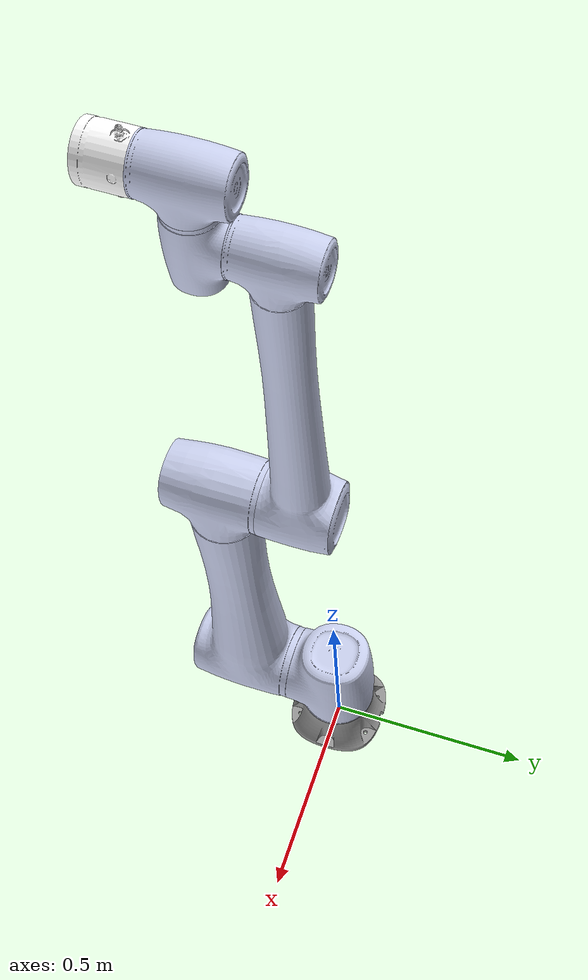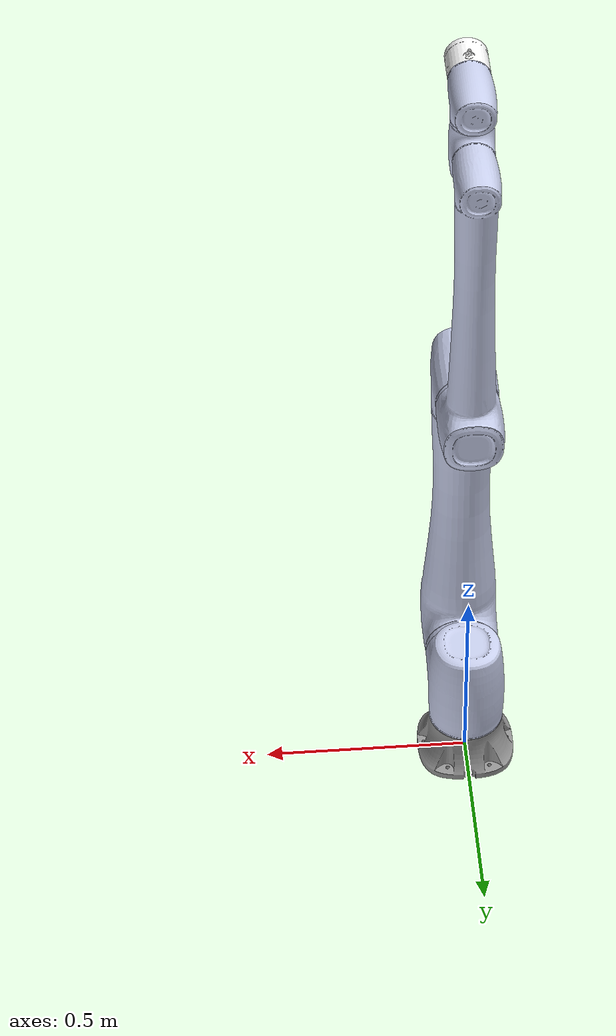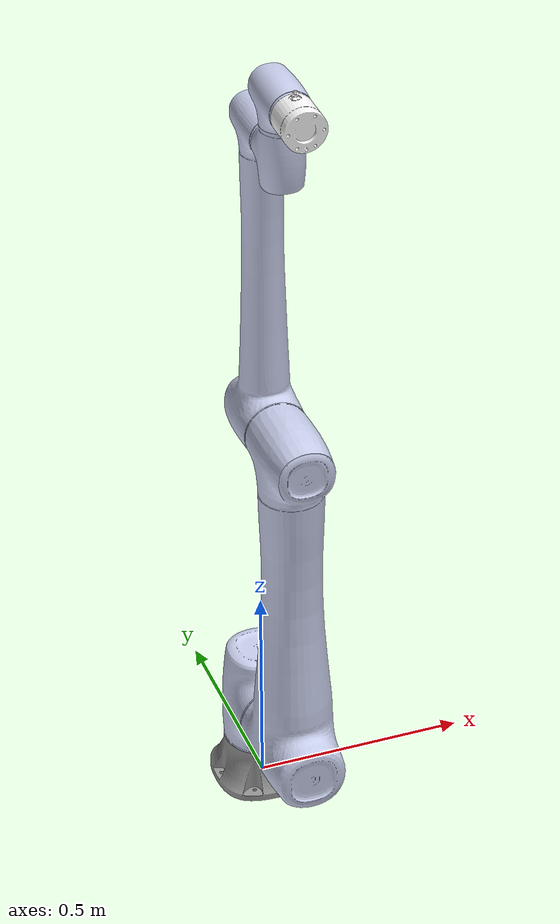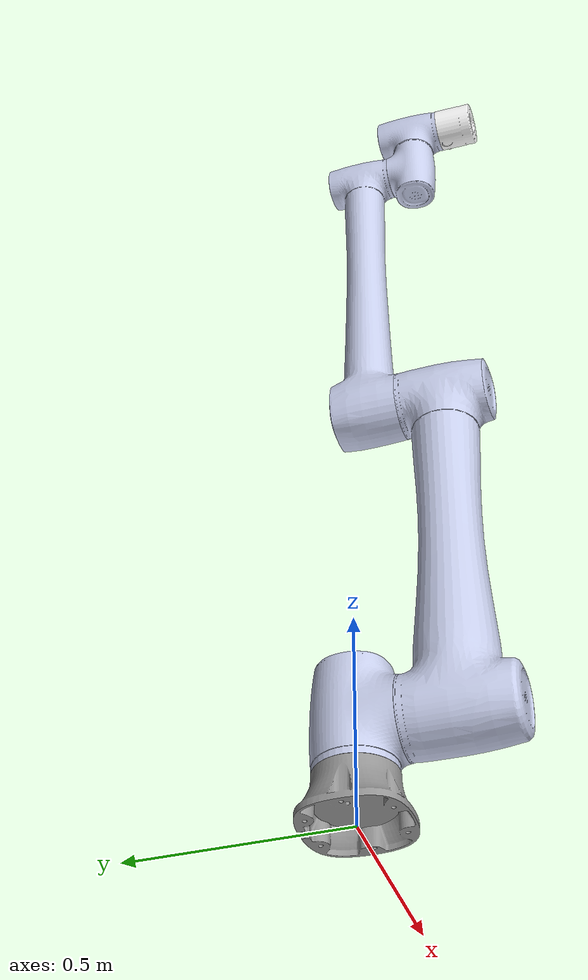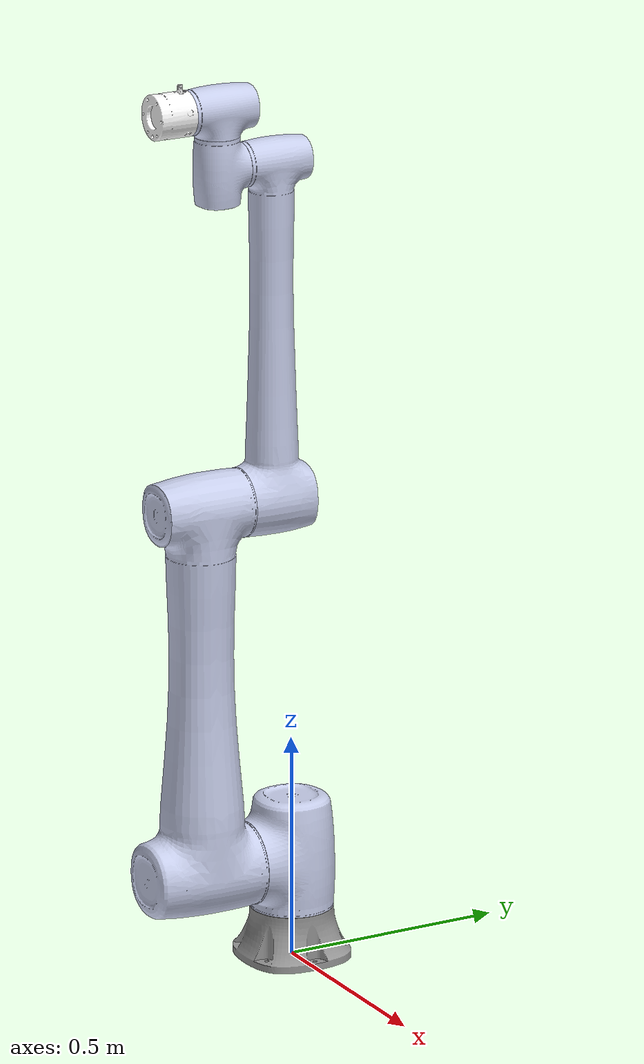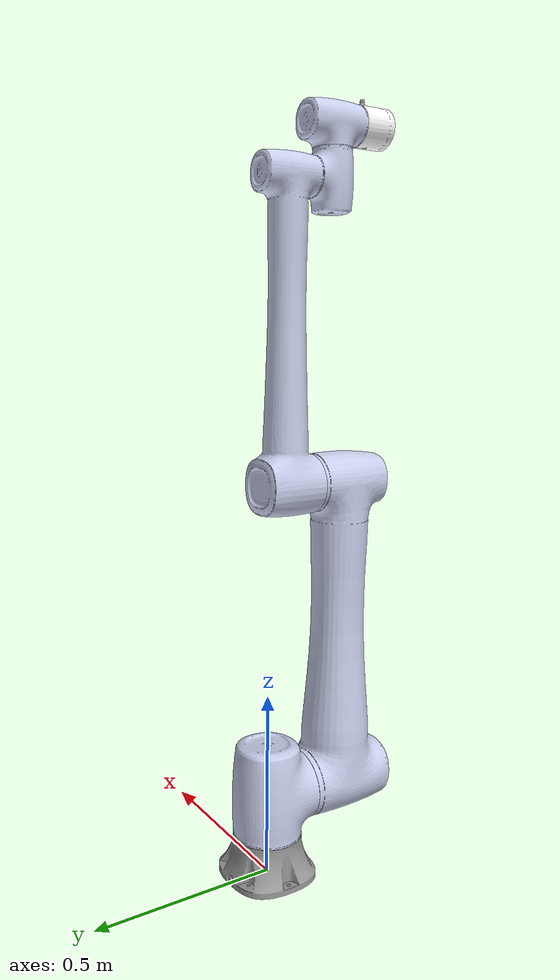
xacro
<?xml version="1.0"?>
<robot xmlns:xacro="http://www.ros.org/wiki/xacro" name="cr20af_robot">
    <xacro:arg name="initial_positions_file" default="initial_positions.yaml" />

    <!-- Import cr20af_robot urdf file -->
    <xacro:include filename="$(find dobot_rviz)/urdf/cr20af_robot.urdf" />

    <!-- Import control_xacro -->
    <xacro:include filename="cr20af_robot.ros2_control.xacro" />

    <xacro:cr20af_robot_ros2_control name="FakeSystem" initial_positions_file="$(arg initial_positions_file)"/>

</robot>

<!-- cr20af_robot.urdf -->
<robot
  name="cr20af_robot">
  <link name="dummy_link" />
  <link
    name="base_link">
    <inertial>
      <origin
        xyz="2.3717E-05 0.00020987 0.065475"
        rpy="0 0 0" />
      <mass
        value="2.9" />
      <inertia
        ixx="0.0078192"
        ixy="-6.2103E-07"
        ixz="-1.9811E-06"
        iyy="0.0077118"
        iyz="-2.2829E-05"
        izz="0.012341" />
    </inertial>
    <visual>
      <origin
        xyz="0 0 0"
        rpy="0 0 0" />
      <geometry>
        <mesh
          filename="package://dobot_rviz/meshes/cr20af/base_link.STL" />
      </geometry>
      <material
        name="">
        <color
          rgba="0.59216 0.59216 0.59216 1" />
      </material>
    </visual>
    <collision>
      <origin
        xyz="0 0 0"
        rpy="0 0 0" />
      <geometry>
        <mesh
          filename="package://dobot_rviz/meshes/cr20af/base_link.STL" />
      </geometry>
    </collision>
  </link>
  <joint name="dummy_joint" type="fixed">
      <parent link="dummy_link" />
      <child  link="base_link" />
    </joint>
  <link
    name="Link1">
    <inertial>
      <origin
        xyz="-1.3205E-07 -0.0072256 0.13128"
        rpy="0 0 0" />
      <mass
        value="18.5" />
      <inertia
        ixx="0.03857"
        ixy="6.2294E-08"
        ixz="3.7106E-07"
        iyy="0.037535"
        iyz="0.00048544"
        izz="0.030549" />
    </inertial>
    <visual>
      <origin
        xyz="0 0 0"
        rpy="0 0 0" />
      <geometry>
        <mesh
          filename="package://dobot_rviz/meshes/cr20af/J1.STL" />
      </geometry>
      <material
        name="">
        <color
          rgba="0.79216 0.81961 0.93333 1" />
      </material>
    </visual>
    <collision>
      <origin
        xyz="0 0 0"
        rpy="0 0 0" />
      <geometry>
        <mesh
          filename="package://dobot_rviz/meshes/cr20af/J1.STL" />
      </geometry>
    </collision>
  </link>
  <joint
    name="joint1"
    type="revolute">
    <origin
      xyz="0 0 0.106"
      rpy="0 0 0" />
    <parent
      link="base_link" />
    <child
      link="Link1" />
    <axis
      xyz="0 0 1" />
    <limit
      lower="-6.2831"
      upper="6.2831"
      effort="100"
      velocity="3.14" />
  </joint>
  <link
    name="Link2">
    <inertial>
      <origin
        xyz="-1.38E-06 -0.12595 0.34046"
        rpy="0 0 0" />
      <mass
        value="35.9" />
      <inertia
        ixx="1.8933"
        ixy="-5.9217E-07"
        ixz="1.1868E-05"
        iyy="1.884"
        iyz="0.022501"
        izz="0.086168" />
    </inertial>
    <visual>
      <origin
        xyz="0 0 0"
        rpy="0 0 0" />
      <geometry>
        <mesh
          filename="package://dobot_rviz/meshes/cr20af/J2.STL" />
      </geometry>
      <material
        name="">
        <color
          rgba="0.79216 0.81961 0.93333 1" />
      </material>
    </visual>
    <collision>
      <origin
        xyz="0 0 0"
        rpy="0 0 0" />
      <geometry>
        <mesh
          filename="package://dobot_rviz/meshes/cr20af/J2.STL" />
      </geometry>
    </collision>
  </link>
  <joint
    name="joint2"
    type="revolute">
    <origin
      xyz="0 -0.0965 0.124"
      rpy="0 0 0" />
    <parent
      link="Link1" />
    <child
      link="Link2" />
    <axis
      xyz="0 -1 0" />
    <limit
      lower="-6.2831"
      upper="6.2831"
      effort="100"
      velocity="3.14" />
  </joint>
  <link
    name="Link3">
    <inertial>
      <origin
        xyz="5.4361E-06 0.07653 0.21729"
        rpy="0 0 0" />
      <mass
        value="8.7" />
      <inertia
        ixx="0.42094"
        ixy="-6.5011E-07"
        ixz="2.302E-05"
        iyy="0.42027"
        iyz="-0.0016083"
        izz="0.013355" />
    </inertial>
    <visual>
      <origin
        xyz="0 0 0"
        rpy="0 0 0" />
      <geometry>
        <mesh
          filename="package://dobot_rviz/meshes/cr20af/J3.STL" />
      </geometry>
      <material
        name="">
        <color
          rgba="0.79216 0.81961 0.93333 1" />
      </material>
    </visual>
    <collision>
      <origin
        xyz="0 0 0"
        rpy="0 0 0" />
      <geometry>
        <mesh
          filename="package://dobot_rviz/meshes/cr20af/J3.STL" />
      </geometry>
    </collision>
  </link>
  <joint
    name="joint3"
    type="revolute">
    <origin
      xyz="0 -0.0268 0.8252"
      rpy="0 0 0" />
    <parent
      link="Link2" />
    <child
      link="Link3" />
    <axis
      xyz="0 -1 0" />
    <limit
      lower="-2.9321"
      upper="2.9321"
      effort="100"
      velocity="3.89" />
  </joint>
  <link
    name="Link4">
    <inertial>
      <origin
        xyz="3.1771E-06 -0.051635 0.0086353"
        rpy="0 0 0" />
      <mass
        value="3.23" />
      <inertia
        ixx="0.0015082"
        ixy="-1.6561E-06"
        ixz="-5.0226E-07"
        iyy="0.0014391"
        iyz="-3.1847E-05"
        izz="0.0012089" />
    </inertial>
    <visual>
      <origin
        xyz="0 0 0"
        rpy="0 0 0" />
      <geometry>
        <mesh
          filename="package://dobot_rviz/meshes/cr20af/J4.STL" />
      </geometry>
      <material
        name="">
        <color
          rgba="0.79216 0.81961 0.93333 1" />
      </material>
    </visual>
    <collision>
      <origin
        xyz="0 0 0"
        rpy="0 0 0" />
      <geometry>
        <mesh
          filename="package://dobot_rviz/meshes/cr20af/J4.STL" />
      </geometry>
    </collision>
  </link>
  <joint
    name="joint4"
    type="revolute">
    <origin
      xyz="-6.0194E-05 0.0057 0.74601"
      rpy="0 0 0" />
    <parent
      link="Link3" />
    <child
      link="Link4" />
    <axis
      xyz="0 -1 0" />
    <limit
      lower="-6.2831"
      upper="6.2831"
      effort="100"
      velocity="3.89" />
  </joint>
  <link
    name="Link5">
    <inertial>
      <origin
        xyz="-8.4434E-06 -0.0086407 0.051636"
        rpy="0 0 0" />
      <mass
        value="3.25" />
      <inertia
        ixx="0.0015082"
        ixy="-4.9765E-07"
        ixz="-1.6507E-06"
        iyy="0.0012088"
        iyz="-3.1857E-05"
        izz="0.0014391" />
    </inertial>
    <visual>
      <origin
        xyz="0 0 0"
        rpy="0 0 0" />
      <geometry>
        <mesh
          filename="package://dobot_rviz/meshes/cr20af/J5.STL" />
      </geometry>
      <material
        name="">
        <color
          rgba="0.79216 0.81961 0.93333 1" />
      </material>
    </visual>
    <collision>
      <origin
        xyz="0 0 0"
        rpy="0 0 0" />
      <geometry>
        <mesh
          filename="package://dobot_rviz/meshes/cr20af/J5.STL" />
      </geometry>
    </collision>
  </link>
  <joint
    name="joint5"
    type="revolute">
    <origin
      xyz="0.00012536 -0.057999 0.070795"
      rpy="0 0 0" />
    <parent
      link="Link4" />
    <child
      link="Link5" />
    <axis
      xyz="0 0 1" />
    <limit
      lower="-6.2831"
      upper="6.2831"
      effort="100"
      velocity="3.89" />
  </joint>
  <link
    name="Link6">
    <inertial>
      <origin
        xyz="-1.4701E-05 -0.041324 0.0001913"
        rpy="0 0 0" />
      <mass
        value="0.95" />
      <inertia
        ixx="0.00066872"
        ixy="-2.0626E-07"
        ixz="-1.0811E-08"
        iyy="0.00072199"
        iyz="1.5946E-06"
        izz="0.00067181" />
    </inertial>
    <visual>
      <origin
        xyz="0 0 0"
        rpy="0 0 0" />
      <geometry>
        <mesh
          filename="package://dobot_rviz/meshes/cr20af/J6.STL" />
      </geometry>
      <material
        name="">
        <color
          rgba="1 1 1 1" />
      </material>
    </visual>
    <collision>
      <origin
        xyz="0 0 0"
        rpy="0 0 0" />
      <geometry>
        <mesh
          filename="package://dobot_rviz/meshes/cr20af/J6.STL" />
      </geometry>
    </collision>
  </link>
  <joint
    name="joint6"
    type="revolute">
    <origin
      xyz="-6.6123E-05 -0.070502 0.058"
      rpy="0 0 0" />
    <parent
      link="Link5" />
    <child
      link="Link6" />
    <axis
      xyz="0 -1 0" />
    <limit
      lower="-6.2831"
      upper="6.2831"
      effort="100"
      velocity="3.89" />
  </joint>
  <link name="tool0"/>
  <joint name="tool_joint" type="fixed">
    <origin xyz="0 0 0" rpy="4.7124 0 3.14159" />
    <parent link="Link6" />
    <child link="tool0" />
  </joint>
</robot>
